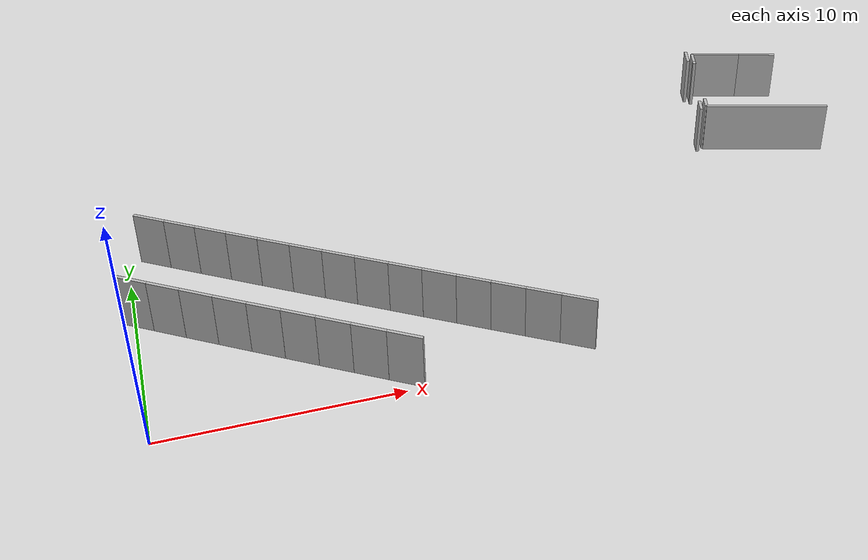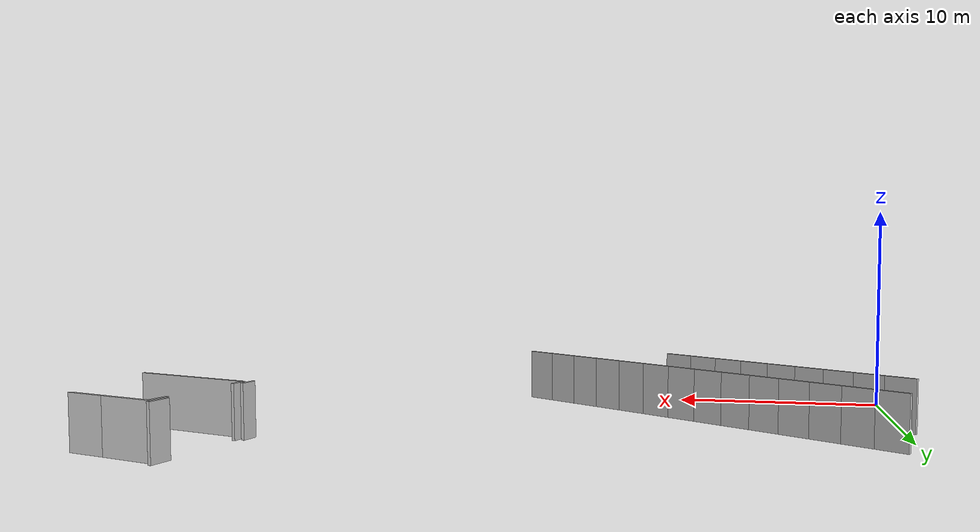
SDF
<?xml version="1.0" ?>
<sdf version="1.6">
  <model name="sps_1207">
    <pose frame="">0 0 0 0 -0 0</pose>
    <static>1</static>
    <self_collide>0</self_collide>
    <allow_auto_disable>0</allow_auto_disable>
    <link name="Wall8">
      <kinematic>0</kinematic>
      <gravity>1</gravity>
      <self_collide>0</self_collide>
      <collision name="collision">
        <geometry>
          <box>
            <size>1.06106 0.15 2.5</size>
          </box>
        </geometry>
        <pose frame="">0 0 0 0 -0 0</pose>
      </collision>
      <visual name="visual">
        <geometry>
          <box>
            <size>1.06106 0.15 2.5</size>
          </box>
        </geometry>
        <pose frame="">0 0 0 0 -0 0</pose>
        <cast_shadows>1</cast_shadows>
        <transparency>0.0</transparency>
      </visual>
      <pose frame="">29.9149 18.4915 1.25 0 0 -1.85665</pose>
    </link>
    <link name="Wall177">
      <kinematic>0</kinematic>
      <gravity>1</gravity>
      <self_collide>0</self_collide>
      <collision name="collision">
        <geometry>
          <box>
            <size>0.246796 0.15 2.5</size>
          </box>
        </geometry>
        <pose frame="">0 0 0 0 -0 0</pose>
      </collision>
      <visual name="visual">
        <geometry>
          <box>
            <size>0.246796 0.15 2.5</size>
          </box>
        </geometry>
        <pose frame="">0 0 0 0 -0 0</pose>
        <cast_shadows>1</cast_shadows>
        <transparency>0.0</transparency>
      </visual>
      <pose frame="">30.017 17.7747 1.25 0 -0 1.28545</pose>
    </link>
    <link name="Wall178">
      <kinematic>0</kinematic>
      <gravity>1</gravity>
      <self_collide>0</self_collide>
      <collision name="collision">
        <geometry>
          <box>
            <size>0.765576 0.15 2.5</size>
          </box>
        </geometry>
        <pose frame="">0 0 0 0 -0 0</pose>
      </collision>
      <visual name="visual">
        <geometry>
          <box>
            <size>0.765576 0.15 2.5</size>
          </box>
        </geometry>
        <pose frame="">0 0 0 0 -0 0</pose>
        <cast_shadows>1</cast_shadows>
        <transparency>0.0</transparency>
      </visual>
      <pose frame="">30.1595 18.2604 1.25 0 -0 1.28545</pose>
    </link>
    <link name="Wall279">
      <kinematic>0</kinematic>
      <gravity>1</gravity>
      <self_collide>0</self_collide>
      <collision name="collision">
        <geometry>
          <box>
            <size>6.01664 0.15 2.5</size>
          </box>
        </geometry>
        <pose frame="">0 0 0 0 -0 0</pose>
      </collision>
      <visual name="visual">
        <geometry>
          <box>
            <size>6.01664 0.15 2.5</size>
          </box>
        </geometry>
        <pose frame="">0 0 0 0 -0 0</pose>
        <cast_shadows>1</cast_shadows>
        <transparency>0.0</transparency>
      </visual>
      <pose frame="">31.594 12.4655 1.25 0 -0 2.84321</pose>
    </link>
    <link name="Wall338">
      <kinematic>0</kinematic>
      <gravity>1</gravity>
      <self_collide>0</self_collide>
      <collision name="collision">
        <geometry>
          <box>
            <size>0.779484 0.15 2.5</size>
          </box>
        </geometry>
        <pose frame="">0 0 0 0 -0 0</pose>
      </collision>
      <visual name="visual">
        <geometry>
          <box>
            <size>0.779484 0.15 2.5</size>
          </box>
        </geometry>
        <pose frame="">0 0 0 0 -0 0</pose>
        <cast_shadows>1</cast_shadows>
        <transparency>0.0</transparency>
      </visual>
      <pose frame="">28.4556 13.5212 1.25 0 -0 1.28471</pose>
    </link>
    <link name="Wall422">
      <kinematic>0</kinematic>
      <gravity>1</gravity>
      <self_collide>0</self_collide>
      <collision name="collision">
        <geometry>
          <box>
            <size>0.728133 0.15 2.5</size>
          </box>
        </geometry>
        <pose frame="">0 0 0 0 -0 0</pose>
      </collision>
      <visual name="visual">
        <geometry>
          <box>
            <size>0.728133 0.15 2.5</size>
          </box>
        </geometry>
        <pose frame="">0 0 0 0 -0 0</pose>
        <cast_shadows>1</cast_shadows>
        <transparency>0.0</transparency>
      </visual>
      <pose frame="">28.8209 13.6993 1.25 0 -0 1.28624</pose>
    </link>
    <link name="Wall599">
      <kinematic>0</kinematic>
      <gravity>1</gravity>
      <self_collide>0</self_collide>
      <collision name="collision">
        <geometry>
          <box>
            <size>2.4989 0.15 2.5</size>
          </box>
        </geometry>
        <pose frame="">0 0 0 0 -0 0</pose>
      </collision>
      <visual name="visual">
        <geometry>
          <box>
            <size>2.4989 0.15 2.5</size>
          </box>
        </geometry>
        <pose frame="">0 0 0 0 -0 0</pose>
        <cast_shadows>1</cast_shadows>
        <transparency>0.0</transparency>
      </visual>
      <pose frame="">31.4615 18.2604 1.25 0 0 -0.298385</pose>
    </link>
    <link name="Wall600">
      <kinematic>0</kinematic>
      <gravity>1</gravity>
      <self_collide>0</self_collide>
      <collision name="collision">
        <geometry>
          <box>
            <size>1.89758 0.15 2.5</size>
          </box>
        </geometry>
        <pose frame="">0 0 0 0 -0 0</pose>
      </collision>
      <visual name="visual">
        <geometry>
          <box>
            <size>1.89758 0.15 2.5</size>
          </box>
        </geometry>
        <pose frame="">0 0 0 0 -0 0</pose>
        <cast_shadows>1</cast_shadows>
        <transparency>0.0</transparency>
      </visual>
      <pose frame="">33.5626 17.6142 1.25 0 0 -0.298385</pose>
    </link>
    <link name="Wall8632">
      <kinematic>0</kinematic>
      <gravity>1</gravity>
      <self_collide>0</self_collide>
      <collision name="collision">
        <geometry>
          <box>
            <size>1.49904 0.15 2.5</size>
          </box>
        </geometry>
        <pose frame="">0 0 0 0 -0 0</pose>
      </collision>
      <visual name="visual">
        <geometry>
          <box>
            <size>1.49904 0.15 2.5</size>
          </box>
        </geometry>
        <pose frame="">0 0 0 0 -0 0</pose>
        <cast_shadows>1</cast_shadows>
        <transparency>0.0</transparency>
      </visual>
      <pose frame="">0.140952 7.19688 1.25 0 0 -0.596416</pose>
    </link>
    <link name="Wall8633">
      <kinematic>0</kinematic>
      <gravity>1</gravity>
      <self_collide>0</self_collide>
      <collision name="collision">
        <geometry>
          <box>
            <size>1.49892 0.15 2.5</size>
          </box>
        </geometry>
        <pose frame="">0 0 0 0 -0 0</pose>
      </collision>
      <visual name="visual">
        <geometry>
          <box>
            <size>1.49892 0.15 2.5</size>
          </box>
        </geometry>
        <pose frame="">0 0 0 0 -0 0</pose>
        <cast_shadows>1</cast_shadows>
        <transparency>0.0</transparency>
      </visual>
      <pose frame="">1.38186 6.356 1.25 0 0 -0.5947</pose>
    </link>
    <link name="Wall8634">
      <kinematic>0</kinematic>
      <gravity>1</gravity>
      <self_collide>0</self_collide>
      <collision name="collision">
        <geometry>
          <box>
            <size>1.49899 0.15 2.5</size>
          </box>
        </geometry>
        <pose frame="">0 0 0 0 -0 0</pose>
      </collision>
      <visual name="visual">
        <geometry>
          <box>
            <size>1.49899 0.15 2.5</size>
          </box>
        </geometry>
        <pose frame="">0 0 0 0 -0 0</pose>
        <cast_shadows>1</cast_shadows>
        <transparency>0.0</transparency>
      </visual>
      <pose frame="">2.62414 5.5172 1.25 0 0 -0.593096</pose>
    </link>
    <link name="Wall8635">
      <kinematic>0</kinematic>
      <gravity>1</gravity>
      <self_collide>0</self_collide>
      <collision name="collision">
        <geometry>
          <box>
            <size>1.49898 0.15 2.5</size>
          </box>
        </geometry>
        <pose frame="">0 0 0 0 -0 0</pose>
      </collision>
      <visual name="visual">
        <geometry>
          <box>
            <size>1.49898 0.15 2.5</size>
          </box>
        </geometry>
        <pose frame="">0 0 0 0 -0 0</pose>
        <cast_shadows>1</cast_shadows>
        <transparency>0.0</transparency>
      </visual>
      <pose frame="">3.86773 4.68028 1.25 0 0 -0.591628</pose>
    </link>
    <link name="Wall8636">
      <kinematic>0</kinematic>
      <gravity>1</gravity>
      <self_collide>0</self_collide>
      <collision name="collision">
        <geometry>
          <box>
            <size>1.49887 0.15 2.5</size>
          </box>
        </geometry>
        <pose frame="">0 0 0 0 -0 0</pose>
      </collision>
      <visual name="visual">
        <geometry>
          <box>
            <size>1.49887 0.15 2.5</size>
          </box>
        </geometry>
        <pose frame="">0 0 0 0 -0 0</pose>
        <cast_shadows>1</cast_shadows>
        <transparency>0.0</transparency>
      </visual>
      <pose frame="">5.11254 3.84529 1.25 0 0 -0.590058</pose>
    </link>
    <link name="Wall8637">
      <kinematic>0</kinematic>
      <gravity>1</gravity>
      <self_collide>0</self_collide>
      <collision name="collision">
        <geometry>
          <box>
            <size>1.49895 0.15 2.5</size>
          </box>
        </geometry>
        <pose frame="">0 0 0 0 -0 0</pose>
      </collision>
      <visual name="visual">
        <geometry>
          <box>
            <size>1.49895 0.15 2.5</size>
          </box>
        </geometry>
        <pose frame="">0 0 0 0 -0 0</pose>
        <cast_shadows>1</cast_shadows>
        <transparency>0.0</transparency>
      </visual>
      <pose frame="">6.35866 3.01228 1.25 0 0 -0.588454</pose>
    </link>
    <link name="Wall8638">
      <kinematic>0</kinematic>
      <gravity>1</gravity>
      <self_collide>0</self_collide>
      <collision name="collision">
        <geometry>
          <box>
            <size>1.49892 0.15 2.5</size>
          </box>
        </geometry>
        <pose frame="">0 0 0 0 -0 0</pose>
      </collision>
      <visual name="visual">
        <geometry>
          <box>
            <size>1.49892 0.15 2.5</size>
          </box>
        </geometry>
        <pose frame="">0 0 0 0 -0 0</pose>
        <cast_shadows>1</cast_shadows>
        <transparency>0.0</transparency>
      </visual>
      <pose frame="">7.60616 2.18129 1.25 0 0 -0.586805</pose>
    </link>
    <link name="Wall8639">
      <kinematic>0</kinematic>
      <gravity>1</gravity>
      <self_collide>0</self_collide>
      <collision name="collision">
        <geometry>
          <box>
            <size>1.49899 0.15 2.5</size>
          </box>
        </geometry>
        <pose frame="">0 0 0 0 -0 0</pose>
      </collision>
      <visual name="visual">
        <geometry>
          <box>
            <size>1.49899 0.15 2.5</size>
          </box>
        </geometry>
        <pose frame="">0 0 0 0 -0 0</pose>
        <cast_shadows>1</cast_shadows>
        <transparency>0.0</transparency>
      </visual>
      <pose frame="">8.85494 1.35219 1.25 0 0 -0.585405</pose>
    </link>
    <link name="Wall8640">
      <kinematic>0</kinematic>
      <gravity>1</gravity>
      <self_collide>0</self_collide>
      <collision name="collision">
        <geometry>
          <box>
            <size>1.49891 0.15 2.5</size>
          </box>
        </geometry>
        <pose frame="">0 0 0 0 -0 0</pose>
      </collision>
      <visual name="visual">
        <geometry>
          <box>
            <size>1.49891 0.15 2.5</size>
          </box>
        </geometry>
        <pose frame="">0 0 0 0 -0 0</pose>
        <cast_shadows>1</cast_shadows>
        <transparency>0.0</transparency>
      </visual>
      <pose frame="">10.105 0.525069 1.25 0 0 -0.583632</pose>
    </link>
    <link name="Wall9712">
      <kinematic>0</kinematic>
      <gravity>1</gravity>
      <self_collide>0</self_collide>
      <collision name="collision">
        <geometry>
          <box>
            <size>1.49225 0.15 2.5</size>
          </box>
        </geometry>
        <pose frame="">0 0 0 0 -0 0</pose>
      </collision>
      <visual name="visual">
        <geometry>
          <box>
            <size>1.49225 0.15 2.5</size>
          </box>
        </geometry>
        <pose frame="">0 0 0 0 -0 0</pose>
        <cast_shadows>1</cast_shadows>
        <transparency>0.0</transparency>
      </visual>
      <pose frame="">1.23196 11.4617 1.25 0 0 -0.597872</pose>
    </link>
    <link name="Wall9713">
      <kinematic>0</kinematic>
      <gravity>1</gravity>
      <self_collide>0</self_collide>
      <collision name="collision">
        <geometry>
          <box>
            <size>1.49247 0.15 2.5</size>
          </box>
        </geometry>
        <pose frame="">0 0 0 0 -0 0</pose>
      </collision>
      <visual name="visual">
        <geometry>
          <box>
            <size>1.49247 0.15 2.5</size>
          </box>
        </geometry>
        <pose frame="">0 0 0 0 -0 0</pose>
        <cast_shadows>1</cast_shadows>
        <transparency>0.0</transparency>
      </visual>
      <pose frame="">2.46615 10.6227 1.25 0 0 -0.596192</pose>
    </link>
    <link name="Wall9714">
      <kinematic>0</kinematic>
      <gravity>1</gravity>
      <self_collide>0</self_collide>
      <collision name="collision">
        <geometry>
          <box>
            <size>1.49243 0.15 2.5</size>
          </box>
        </geometry>
        <pose frame="">0 0 0 0 -0 0</pose>
      </collision>
      <visual name="visual">
        <geometry>
          <box>
            <size>1.49243 0.15 2.5</size>
          </box>
        </geometry>
        <pose frame="">0 0 0 0 -0 0</pose>
        <cast_shadows>1</cast_shadows>
        <transparency>0.0</transparency>
      </visual>
      <pose frame="">3.70165 9.78548 1.25 0 0 -0.594922</pose>
    </link>
    <link name="Wall9715">
      <kinematic>0</kinematic>
      <gravity>1</gravity>
      <self_collide>0</self_collide>
      <collision name="collision">
        <geometry>
          <box>
            <size>1.49228 0.15 2.5</size>
          </box>
        </geometry>
        <pose frame="">0 0 0 0 -0 0</pose>
      </collision>
      <visual name="visual">
        <geometry>
          <box>
            <size>1.49228 0.15 2.5</size>
          </box>
        </geometry>
        <pose frame="">0 0 0 0 -0 0</pose>
        <cast_shadows>1</cast_shadows>
        <transparency>0.0</transparency>
      </visual>
      <pose frame="">4.93835 8.95018 1.25 0 0 -0.593164</pose>
    </link>
    <link name="Wall9716">
      <kinematic>0</kinematic>
      <gravity>1</gravity>
      <self_collide>0</self_collide>
      <collision name="collision">
        <geometry>
          <box>
            <size>1.49241 0.15 2.5</size>
          </box>
        </geometry>
        <pose frame="">0 0 0 0 -0 0</pose>
      </collision>
      <visual name="visual">
        <geometry>
          <box>
            <size>1.49241 0.15 2.5</size>
          </box>
        </geometry>
        <pose frame="">0 0 0 0 -0 0</pose>
        <cast_shadows>1</cast_shadows>
        <transparency>0.0</transparency>
      </visual>
      <pose frame="">6.17644 8.11699 1.25 0 0 -0.59153</pose>
    </link>
    <link name="Wall9717">
      <kinematic>0</kinematic>
      <gravity>1</gravity>
      <self_collide>0</self_collide>
      <collision name="collision">
        <geometry>
          <box>
            <size>1.49235 0.15 2.5</size>
          </box>
        </geometry>
        <pose frame="">0 0 0 0 -0 0</pose>
      </collision>
      <visual name="visual">
        <geometry>
          <box>
            <size>1.49235 0.15 2.5</size>
          </box>
        </geometry>
        <pose frame="">0 0 0 0 -0 0</pose>
        <cast_shadows>1</cast_shadows>
        <transparency>0.0</transparency>
      </visual>
      <pose frame="">7.41585 7.28569 1.25 0 0 -0.590078</pose>
    </link>
    <link name="Wall9718">
      <kinematic>0</kinematic>
      <gravity>1</gravity>
      <self_collide>0</self_collide>
      <collision name="collision">
        <geometry>
          <box>
            <size>1.49243 0.15 2.5</size>
          </box>
        </geometry>
        <pose frame="">0 0 0 0 -0 0</pose>
      </collision>
      <visual name="visual">
        <geometry>
          <box>
            <size>1.49243 0.15 2.5</size>
          </box>
        </geometry>
        <pose frame="">0 0 0 0 -0 0</pose>
        <cast_shadows>1</cast_shadows>
        <transparency>0.0</transparency>
      </visual>
      <pose frame="">8.65655 6.45628 1.25 0 0 -0.588468</pose>
    </link>
    <link name="Wall9719">
      <kinematic>0</kinematic>
      <gravity>1</gravity>
      <self_collide>0</self_collide>
      <collision name="collision">
        <geometry>
          <box>
            <size>1.49243 0.15 2.5</size>
          </box>
        </geometry>
        <pose frame="">0 0 0 0 -0 0</pose>
      </collision>
      <visual name="visual">
        <geometry>
          <box>
            <size>1.49243 0.15 2.5</size>
          </box>
        </geometry>
        <pose frame="">0 0 0 0 -0 0</pose>
        <cast_shadows>1</cast_shadows>
        <transparency>0.0</transparency>
      </visual>
      <pose frame="">9.89855 5.62877 1.25 0 0 -0.586993</pose>
    </link>
    <link name="Wall9720">
      <kinematic>0</kinematic>
      <gravity>1</gravity>
      <self_collide>0</self_collide>
      <collision name="collision">
        <geometry>
          <box>
            <size>1.49254 0.15 2.5</size>
          </box>
        </geometry>
        <pose frame="">0 0 0 0 -0 0</pose>
      </collision>
      <visual name="visual">
        <geometry>
          <box>
            <size>1.49254 0.15 2.5</size>
          </box>
        </geometry>
        <pose frame="">0 0 0 0 -0 0</pose>
        <cast_shadows>1</cast_shadows>
        <transparency>0.0</transparency>
      </visual>
      <pose frame="">11.142 4.80327 1.25 0 0 -0.585178</pose>
    </link>
    <link name="Wall9721">
      <kinematic>0</kinematic>
      <gravity>1</gravity>
      <self_collide>0</self_collide>
      <collision name="collision">
        <geometry>
          <box>
            <size>1.49224 0.15 2.5</size>
          </box>
        </geometry>
        <pose frame="">0 0 0 0 -0 0</pose>
      </collision>
      <visual name="visual">
        <geometry>
          <box>
            <size>1.49224 0.15 2.5</size>
          </box>
        </geometry>
        <pose frame="">0 0 0 0 -0 0</pose>
        <cast_shadows>1</cast_shadows>
        <transparency>0.0</transparency>
      </visual>
      <pose frame="">12.3866 3.97987 1.25 0 0 -0.583692</pose>
    </link>
    <link name="Wall9722">
      <kinematic>0</kinematic>
      <gravity>1</gravity>
      <self_collide>0</self_collide>
      <collision name="collision">
        <geometry>
          <box>
            <size>1.49261 0.15 2.5</size>
          </box>
        </geometry>
        <pose frame="">0 0 0 0 -0 0</pose>
      </collision>
      <visual name="visual">
        <geometry>
          <box>
            <size>1.49261 0.15 2.5</size>
          </box>
        </geometry>
        <pose frame="">0 0 0 0 -0 0</pose>
        <cast_shadows>1</cast_shadows>
        <transparency>0.0</transparency>
      </visual>
      <pose frame="">13.6327 3.1584 1.25 0 0 -0.58206</pose>
    </link>
    <link name="Wall9723">
      <kinematic>0</kinematic>
      <gravity>1</gravity>
      <self_collide>0</self_collide>
      <collision name="collision">
        <geometry>
          <box>
            <size>1.49225 0.15 2.5</size>
          </box>
        </geometry>
        <pose frame="">0 0 0 0 -0 0</pose>
      </collision>
      <visual name="visual">
        <geometry>
          <box>
            <size>1.49225 0.15 2.5</size>
          </box>
        </geometry>
        <pose frame="">0 0 0 0 -0 0</pose>
        <cast_shadows>1</cast_shadows>
        <transparency>0.0</transparency>
      </visual>
      <pose frame="">14.88 2.33891 1.25 0 0 -0.580504</pose>
    </link>
    <link name="Wall9724">
      <kinematic>0</kinematic>
      <gravity>1</gravity>
      <self_collide>0</self_collide>
      <collision name="collision">
        <geometry>
          <box>
            <size>1.49243 0.15 2.5</size>
          </box>
        </geometry>
        <pose frame="">0 0 0 0 -0 0</pose>
      </collision>
      <visual name="visual">
        <geometry>
          <box>
            <size>1.49243 0.15 2.5</size>
          </box>
        </geometry>
        <pose frame="">0 0 0 0 -0 0</pose>
        <cast_shadows>1</cast_shadows>
        <transparency>0.0</transparency>
      </visual>
      <pose frame="">16.1285 1.52141 1.25 0 0 -0.578962</pose>
    </link>
    <link name="Wall9725">
      <kinematic>0</kinematic>
      <gravity>1</gravity>
      <self_collide>0</self_collide>
      <collision name="collision">
        <geometry>
          <box>
            <size>1.49233 0.15 2.5</size>
          </box>
        </geometry>
        <pose frame="">0 0 0 0 -0 0</pose>
      </collision>
      <visual name="visual">
        <geometry>
          <box>
            <size>1.49233 0.15 2.5</size>
          </box>
        </geometry>
        <pose frame="">0 0 0 0 -0 0</pose>
        <cast_shadows>1</cast_shadows>
        <transparency>0.0</transparency>
      </visual>
      <pose frame="">17.3783 0.705794 1.25 0 0 -0.577442</pose>
    </link>
  </model>
</sdf>
